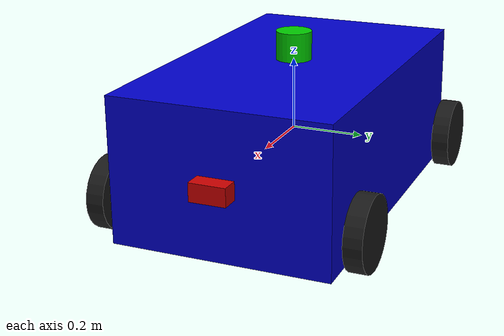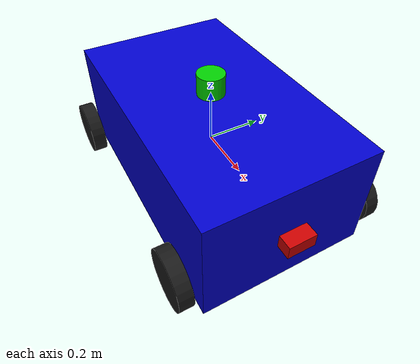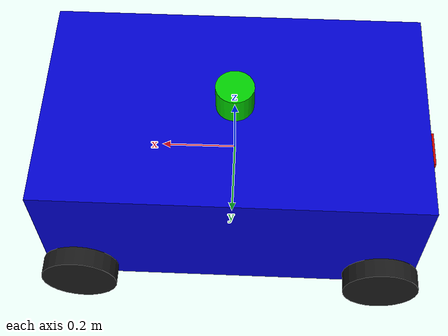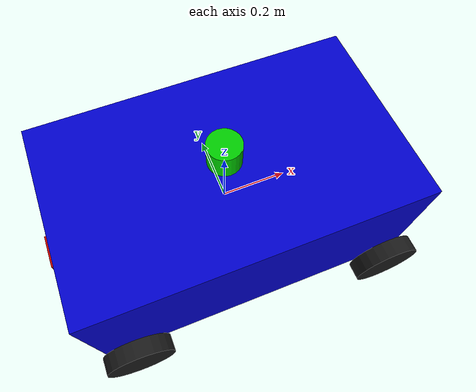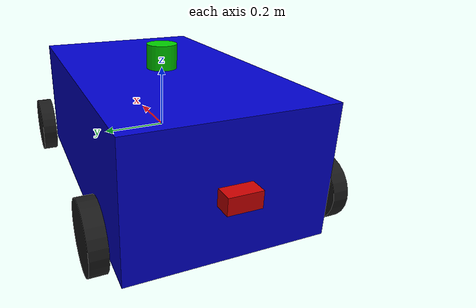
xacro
<?xml version="1.0"?>
<robot xmlns:xacro="http://www.ros.org/wiki/xacro" name="sensor_robot">

  <!-- ==================== PROPERTIES ==================== -->
  <xacro:property name="body_length" value="1.0"/>
  <xacro:property name="body_width"  value="0.6"/>
  <xacro:property name="body_height" value="0.4"/>

  <xacro:property name="wheel_radius" value="0.1"/>
  <xacro:property name="wheel_width"  value="0.05"/>

  <!-- ==================== BASE LINK ==================== -->
  <link name="base_link">
    <visual>
      <geometry>
        <box size="${body_length} ${body_width} ${body_height}"/>
      </geometry>
      <material name="blue">
        <color rgba="0.0 0.0 0.8 1.0"/>
      </material>
    </visual>
    <collision>
      <geometry>
        <box size="${body_length} ${body_width} ${body_height}"/>
      </geometry>
    </collision>
    <inertial>
      <mass value="10.0"/>
      <inertia ixx="0.1" ixy="0.0" ixz="0.0"
               iyy="0.1" iyz="0.0" izz="0.1"/>
    </inertial>
  </link>

  <!-- ==================== WHEEL MACRO ==================== -->
  <xacro:macro name="wheel" params="name x y">
    <link name="${name}_wheel">
      <visual>
        <geometry>
          <cylinder radius="${wheel_radius}" length="${wheel_width}"/>
        </geometry>
        <material name="black">
          <color rgba="0.1 0.1 0.1 1.0"/>
        </material>
      </visual>
      <collision>
        <geometry>
          <cylinder radius="${wheel_radius}" length="${wheel_width}"/>
        </geometry>
      </collision>
      <inertial>
        <mass value="1.0"/>
        <inertia ixx="0.01" ixy="0.0" ixz="0.0"
                 iyy="0.01" iyz="0.0" izz="0.01"/>
      </inertial>
    </link>

    <joint name="${name}_wheel_joint" type="continuous">
      <parent link="base_link"/>
      <child link="${name}_wheel"/>
      <origin xyz="${x} ${y} -0.1" rpy="1.5708 0 0"/>
      <axis xyz="0 0 1"/>
    </joint>
  </xacro:macro>

  <!-- 4 Wheels -->
  <xacro:wheel name="front_left"  x=" 0.4" y=" 0.35"/>
  <xacro:wheel name="front_right" x=" 0.4" y="-0.35"/>
  <xacro:wheel name="rear_left"   x="-0.4" y=" 0.35"/>
  <xacro:wheel name="rear_right"  x="-0.4" y="-0.35"/>

  <!-- ==================== FRONT CAMERA ==================== -->
  <link name="front_camera">
    <visual>
      <geometry>
        <box size="0.05 0.1 0.05"/>
      </geometry>
      <material name="red">
        <color rgba="0.8 0.0 0.0 1.0"/>
      </material>
    </visual>
  </link>

  <joint name="front_camera_joint" type="fixed">
    <parent link="base_link"/>
    <child link="front_camera"/>
    <origin xyz="0.525 0.0 0.0" rpy="0 0 0"/>
  </joint>

  <!-- ==================== BACK CAMERA ==================== -->
  <link name="back_camera">
    <visual>
      <geometry>
        <box size="0.05 0.1 0.05"/>
      </geometry>
      <material name="red">
        <color rgba="0.8 0.0 0.0 1.0"/>
      </material>
    </visual>
  </link>

  <joint name="back_camera_joint" type="fixed">
    <parent link="base_link"/>
    <child link="back_camera"/>
    <origin xyz="-0.525 0.0 0.0" rpy="0 0 3.1416"/>
  </joint>

  <!-- ==================== LIDAR ==================== -->
  <link name="lidar">
    <visual>
      <geometry>
        <cylinder radius="0.05" length="0.08"/>
      </geometry>
      <material name="green">
        <color rgba="0.0 0.8 0.0 1.0"/>
      </material>
    </visual>
  </link>

  <joint name="lidar_joint" type="fixed">
    <parent link="base_link"/>
    <child link="lidar"/>
    <origin xyz="0.0 0.0 0.24" rpy="0 0 0"/>
  </joint>
  <!-- ==================== DIFFERENTIAL DRIVE PLUGIN ==================== -->
  <gazebo>
    <plugin name="diff_drive" filename="libgazebo_ros_diff_drive.so">
      <ros>
        <namespace>/</namespace>
      </ros>

      <!-- Wheels -->
      <left_joint>front_left_wheel_joint</left_joint>
      <right_joint>front_right_wheel_joint</right_joint>

      <!-- Wheel specs -->
      <wheel_separation>0.7</wheel_separation>
      <wheel_diameter>0.2</wheel_diameter>

      <!-- Limits -->
      <max_wheel_torque>20</max_wheel_torque>
      <max_wheel_acceleration>1.0</max_wheel_acceleration>

      <!-- Output -->
      <publish_odom>true</publish_odom>
      <publish_odom_tf>true</publish_odom_tf>
      <publish_wheel_tf>false</publish_wheel_tf>

      <odometry_frame>odom</odometry_frame>
      <robot_base_frame>base_link</robot_base_frame>
    </plugin>
  </gazebo>

  <!-- ==================== LIDAR PLUGIN ==================== -->
  <gazebo reference="lidar">
    <sensor type="ray" name="lidar_sensor">
      <pose>0 0 0 0 0 0</pose>
      <visualize>true</visualize>
      <update_rate>10</update_rate>
      <ray>
        <scan>
          <horizontal>
            <samples>360</samples>
            <resolution>1</resolution>
            <min_angle>-3.14159</min_angle>
            <max_angle>3.14159</max_angle>
          </horizontal>
        </scan>
        <range>
          <min>0.1</min>
          <max>10.0</max>
          <resolution>0.01</resolution>
        </range>
      </ray>
      <plugin name="lidar_plugin" filename="libgazebo_ros_ray_sensor.so">
        <ros>
          <namespace>/</namespace>
          <remapping>~/out:=scan</remapping>
        </ros>
        <output_type>sensor_msgs/LaserScan</output_type>
        <frame_name>lidar</frame_name>
      </plugin>
    </sensor>
  </gazebo>

</robot>
